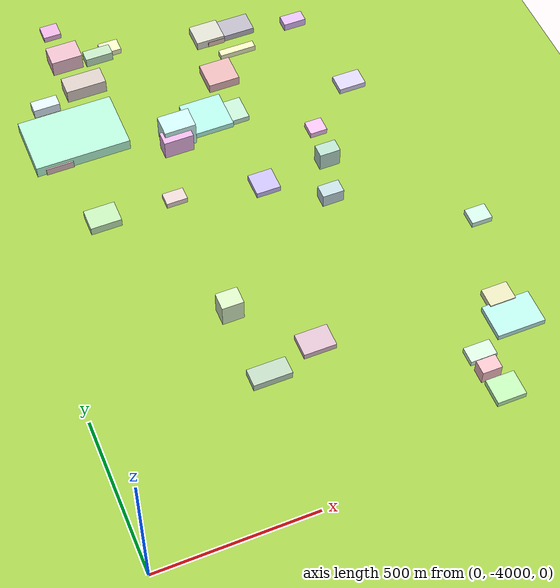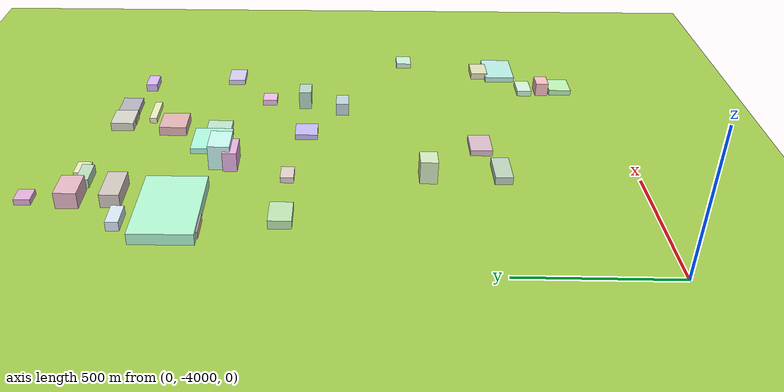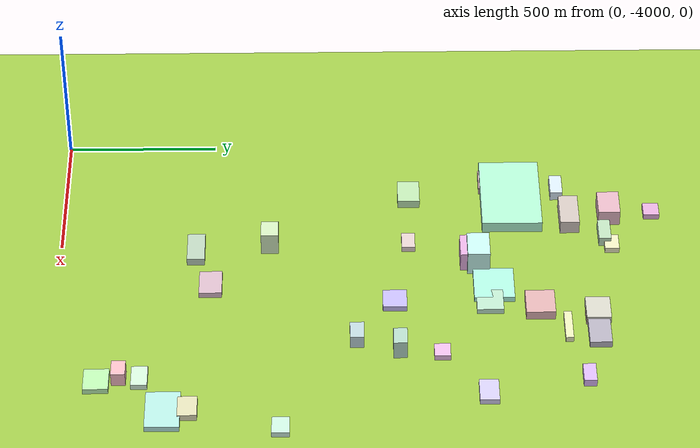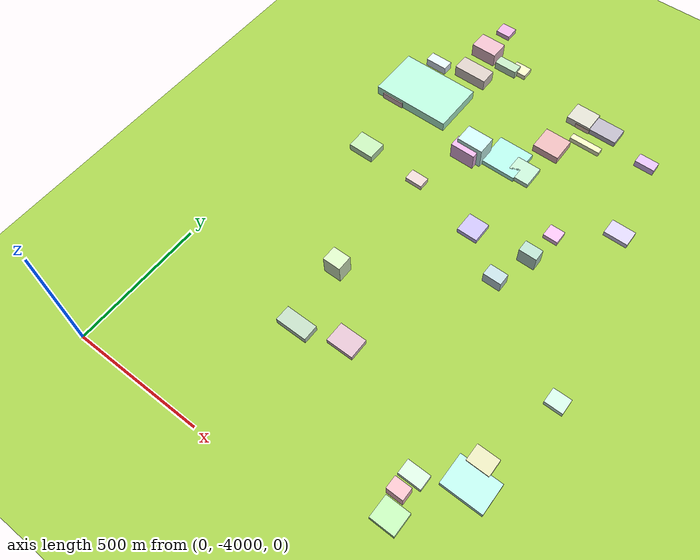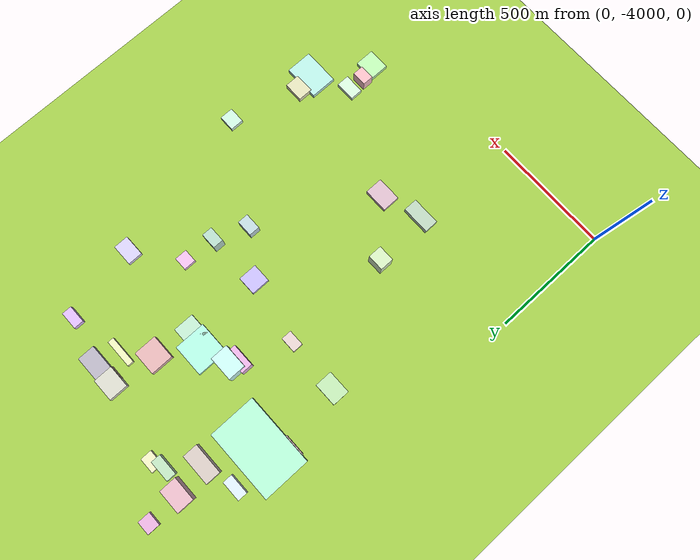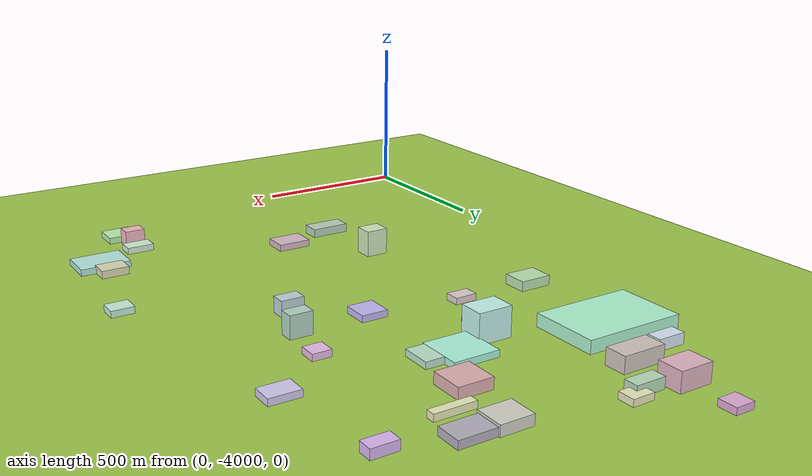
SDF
<sdf version="1.9">
 <world name="city_map">
  <model name="ground_plane">
   <static>1</static>
   <link name="link">
    <collision name="collision">
     <geometry><plane><normal>0 0 1</normal><size>11000 11000</size></plane></geometry>
    </collision>
    <visual name="visual">
     <geometry><plane><normal>0 0 1</normal><size>11000 11000</size></plane></geometry>
     <material>
      <ambient>0.551 0.712 0.210 1</ambient>
      <diffuse>0.651 0.812 0.310 1</diffuse>
      <specular>0.1 0.1 0.05 1</specular>
     </material>
    </visual>
   </link>
  </model>
  <model name="building_52394954">
   <static>1</static>
   <pose>284.5301751078761 -2494.1536711187914 19.5 0 0 0</pose>
   <link name="link">
    <collision name="collision">
     <geometry><box><size>310.01507886331234 201.3651000004728 39.0</size></box></geometry>
    </collision>
    <visual name="visual">
     <cast_shadows>false</cast_shadows>
     <geometry><box><size>310.01507886331234 201.3651000004728 39.0</size></box></geometry>
     <material>
      <ambient>0.614 0.891 0.745 1</ambient>
      <diffuse>0.714 0.991 0.845 1</diffuse>
      <specular>0.214 0.297 0.253 1</specular>
      <emissive>0.01 0.01 0.01 1</emissive>
     </material>
    </visual>
   </link>
  </model>
  <model name="building_309172138">
   <static>1</static>
   <pose>708.4611220423703 -2568.383896521741 10.0 0 0 0</pose>
   <link name="link">
    <collision name="collision">
     <geometry><box><size>138.71670000027336 132.7891002994646 20</size></box></geometry>
    </collision>
    <visual name="visual">
     <cast_shadows>false</cast_shadows>
     <geometry><box><size>138.71670000027336 132.7891002994646 20</size></box></geometry>
     <material>
      <ambient>0.604 0.898 0.798 1</ambient>
      <diffuse>0.704 0.998 0.898 1</diffuse>
      <specular>0.211 0.299 0.269 1</specular>
      <emissive>0.01 0.01 0.01 1</emissive>
     </material>
    </visual>
   </link>
  </model>
  <model name="building_70846053">
   <static>1</static>
   <pose>1272.5089468673098 -3634.069560009593 10.0 0 0 0</pose>
   <link name="link">
    <collision name="collision">
     <geometry><box><size>153.5574000001887 110.51284408469505 20</size></box></geometry>
    </collision>
    <visual name="visual">
     <cast_shadows>false</cast_shadows>
     <geometry><box><size>153.5574000001887 110.51284408469505 20</size></box></geometry>
     <material>
      <ambient>0.636 0.846 0.811 1</ambient>
      <diffuse>0.736 0.946 0.911 1</diffuse>
      <specular>0.221 0.284 0.273 1</specular>
      <emissive>0.01 0.01 0.01 1</emissive>
     </material>
    </visual>
   </link>
  </model>
  <model name="building_496922">
   <static>1</static>
   <pose>923.2569605560539 -2236.037080727702 11.489487341295114 0 0 0</pose>
   <link name="link">
    <collision name="collision">
     <geometry><box><size>138.04440883386172 72.0612000005687 22.978974682590227</size></box></geometry>
    </collision>
    <visual name="visual">
     <cast_shadows>false</cast_shadows>
     <geometry><box><size>138.04440883386172 72.0612000005687 22.978974682590227</size></box></geometry>
     <material>
      <ambient>0.631 0.616 0.672 1</ambient>
      <diffuse>0.731 0.716 0.772 1</diffuse>
      <specular>0.219 0.215 0.232 1</specular>
      <emissive>0.01 0.01 0.01 1</emissive>
     </material>
    </visual>
   </link>
  </model>
  <model name="building_157395479">
   <static>1</static>
   <pose>810.3333677242894 -2421.8799625621205 16.5 0 0 0</pose>
   <link name="link">
    <collision name="collision">
     <geometry><box><size>103.2548698982477 95.61539999977953 33.0</size></box></geometry>
    </collision>
    <visual name="visual">
     <cast_shadows>false</cast_shadows>
     <geometry><box><size>103.2548698982477 95.61539999977953 33.0</size></box></geometry>
     <material>
      <ambient>0.803 0.619 0.624 1</ambient>
      <diffuse>0.903 0.719 0.724 1</diffuse>
      <specular>0.271 0.216 0.217 1</specular>
      <emissive>0.01 0.01 0.01 1</emissive>
     </material>
    </visual>
   </link>
  </model>
  <model name="building_672104369">
   <static>1</static>
   <pose>381.20746355120656 -2302.002176410901 24.0 0 0 0</pose>
   <link name="link">
    <collision name="collision">
     <geometry><box><size>132.95579999999063 63.98546166211206 48.0</size></box></geometry>
    </collision>
    <visual name="visual">
     <cast_shadows>false</cast_shadows>
     <geometry><box><size>132.95579999999063 63.98546166211206 48.0</size></box></geometry>
     <material>
      <ambient>0.747 0.698 0.672 1</ambient>
      <diffuse>0.847 0.798 0.772 1</diffuse>
      <specular>0.254 0.239 0.232 1</specular>
      <emissive>0.01 0.01 0.01 1</emissive>
     </material>
    </visual>
   </link>
  </model>
  <model name="building_144702627">
   <static>1</static>
   <pose>787.7208058710634 -2584.3327178017043 10.0 0 0 0</pose>
   <link name="link">
    <collision name="collision">
     <geometry><box><size>93.41928961545193 87.06840000006366 20</size></box></geometry>
    </collision>
    <visual name="visual">
     <cast_shadows>false</cast_shadows>
     <geometry><box><size>93.41928961545193 87.06840000006366 20</size></box></geometry>
     <material>
      <ambient>0.668 0.822 0.725 1</ambient>
      <diffuse>0.768 0.922 0.825 1</diffuse>
      <specular>0.230 0.277 0.248 1</specular>
      <emissive>0.01 0.01 0.01 1</emissive>
     </material>
    </visual>
   </link>
  </model>
  <model name="building_963803786">
   <static>1</static>
   <pose>695.5199338343282 -3498.0687781408683 10.5 0 0 0</pose>
   <link name="link">
    <collision name="collision">
     <geometry><box><size>102.83128759444048 74.98049999998102 21.0</size></box></geometry>
    </collision>
    <visual name="visual">
     <cast_shadows>false</cast_shadows>
     <geometry><box><size>102.83128759444048 74.98049999998102 21.0</size></box></geometry>
     <material>
      <ambient>0.771 0.651 0.707 1</ambient>
      <diffuse>0.871 0.751 0.807 1</diffuse>
      <specular>0.261 0.225 0.242 1</specular>
      <emissive>0.01 0.01 0.01 1</emissive>
     </material>
    </visual>
   </link>
  </model>
  <model name="building_20309006">
   <static>1</static>
   <pose>836.9662986779949 -2235.200272155642 15.0 0 0 0</pose>
   <link name="link">
    <collision name="collision">
     <geometry><box><size>95.99375139465823 80.20859999955832 30.0</size></box></geometry>
    </collision>
    <visual name="visual">
     <cast_shadows>false</cast_shadows>
     <geometry><box><size>95.99375139465823 80.20859999955832 30.0</size></box></geometry>
     <material>
      <ambient>0.759 0.755 0.706 1</ambient>
      <diffuse>0.859 0.855 0.806 1</diffuse>
      <specular>0.258 0.256 0.242 1</specular>
      <emissive>0.01 0.01 0.01 1</emissive>
     </material>
    </visual>
   </link>
  </model>
  <model name="building_784799930">
   <static>1</static>
   <pose>592.0857914288547 -2615.4765991441313 44.15721418621669 0 0 0</pose>
   <link name="link">
    <collision name="collision">
     <geometry><box><size>103.58354785427939 73.87049999962869 88.31442837243338</size></box></geometry>
    </collision>
    <visual name="visual">
     <cast_shadows>false</cast_shadows>
     <geometry><box><size>103.58354785427939 73.87049999962869 88.31442837243338</size></box></geometry>
     <material>
      <ambient>0.702 0.894 0.860 1</ambient>
      <diffuse>0.802 0.994 0.960 1</diffuse>
      <specular>0.241 0.298 0.288 1</specular>
      <emissive>0.01 0.01 0.01 1</emissive>
     </material>
    </visual>
   </link>
  </model>
  <model name="building_842170766">
   <static>1</static>
   <pose>358.2090526752556 -2167.478820151331 28.695498038106628 0 0 0</pose>
   <link name="link">
    <collision name="collision">
     <geometry><box><size>102.68874791285106 72.69389999928677 57.390996076213256</size></box></geometry>
    </collision>
    <visual name="visual">
     <cast_shadows>false</cast_shadows>
     <geometry><box><size>102.68874791285106 72.69389999928677 57.390996076213256</size></box></geometry>
     <material>
      <ambient>0.815 0.638 0.691 1</ambient>
      <diffuse>0.915 0.738 0.791 1</diffuse>
      <specular>0.274 0.221 0.237 1</specular>
      <emissive>0.01 0.01 0.01 1</emissive>
     </material>
    </visual>
   </link>
  </model>
  <model name="building_43973181">
   <static>1</static>
   <pose>1137.0239936066805 -3849.911623292685 10.0 0 0 0</pose>
   <link name="link">
    <collision name="collision">
     <geometry><box><size>90.85466771737504 81.35190000029979 20</size></box></geometry>
    </collision>
    <visual name="visual">
     <cast_shadows>false</cast_shadows>
     <geometry><box><size>90.85466771737504 81.35190000029979 20</size></box></geometry>
     <material>
      <ambient>0.658 0.875 0.619 1</ambient>
      <diffuse>0.758 0.975 0.719 1</diffuse>
      <specular>0.227 0.293 0.216 1</specular>
      <emissive>0.01 0.01 0.01 1</emissive>
     </material>
    </visual>
   </link>
  </model>
  <model name="building_508705891">
   <static>1</static>
   <pose>264.5561957216304 -2838.7498454021093 15.0 0 0 0</pose>
   <link name="link">
    <collision name="collision">
     <geometry><box><size>99.92219999963226 73.85965444616939 30.0</size></box></geometry>
    </collision>
    <visual name="visual">
     <cast_shadows>false</cast_shadows>
     <geometry><box><size>99.92219999963226 73.85965444616939 30.0</size></box></geometry>
     <material>
      <ambient>0.666 0.821 0.618 1</ambient>
      <diffuse>0.766 0.921 0.718 1</diffuse>
      <specular>0.230 0.276 0.215 1</specular>
      <emissive>0.01 0.01 0.01 1</emissive>
     </material>
    </visual>
   </link>
  </model>
  <model name="building_748717756">
   <static>1</static>
   <pose>529.5425619820187 -3550.2035825913667 13.5 0 0 0</pose>
   <link name="link">
    <collision name="collision">
     <geometry><box><size>121.07569614678245 58.58580000004565 27.0</size></box></geometry>
    </collision>
    <visual name="visual">
     <cast_shadows>false</cast_shadows>
     <geometry><box><size>121.07569614678245 58.58580000004565 27.0</size></box></geometry>
     <material>
      <ambient>0.652 0.745 0.659 1</ambient>
      <diffuse>0.752 0.845 0.759 1</diffuse>
      <specular>0.226 0.254 0.228 1</specular>
      <emissive>0.01 0.01 0.01 1</emissive>
     </material>
    </visual>
   </link>
  </model>
  <model name="building_134703560">
   <static>1</static>
   <pose>778.5675582324317 -2894.90646124473 10.0 0 0 0</pose>
   <link name="link">
    <collision name="collision">
     <geometry><box><size>79.58436003297963 78.93210000041506 20</size></box></geometry>
    </collision>
    <visual name="visual">
     <cast_shadows>false</cast_shadows>
     <geometry><box><size>79.58436003297963 78.93210000041506 20</size></box></geometry>
     <material>
      <ambient>0.691 0.650 0.886 1</ambient>
      <diffuse>0.791 0.750 0.986 1</diffuse>
      <specular>0.237 0.225 0.296 1</specular>
      <emissive>0.01 0.01 0.01 1</emissive>
     </material>
    </visual>
   </link>
  </model>
  <model name="building_538519268">
   <static>1</static>
   <pose>1197.5430749743725 -2605.0417947845217 10.0 0 0 0</pose>
   <link name="link">
    <collision name="collision">
     <geometry><box><size>90.70920000002047 62.50940316611191 20</size></box></geometry>
    </collision>
    <visual name="visual">
     <cast_shadows>false</cast_shadows>
     <geometry><box><size>90.70920000002047 62.50940316611191 20</size></box></geometry>
     <material>
      <ambient>0.753 0.726 0.867 1</ambient>
      <diffuse>0.853 0.826 0.967 1</diffuse>
      <specular>0.256 0.248 0.290 1</specular>
      <emissive>0.01 0.01 0.01 1</emissive>
     </material>
    </visual>
   </link>
  </model>
  <model name="building_456210928">
   <static>1</static>
   <pose>1262.0184093198595 -3556.711193382609 12.0 0 0 0</pose>
   <link name="link">
    <collision name="collision">
     <geometry><box><size>83.05019999964003 62.278282438416454 24.0</size></box></geometry>
    </collision>
    <visual name="visual">
     <cast_shadows>false</cast_shadows>
     <geometry><box><size>83.05019999964003 62.278282438416454 24.0</size></box></geometry>
     <material>
      <ambient>0.799 0.791 0.639 1</ambient>
      <diffuse>0.899 0.891 0.739 1</diffuse>
      <specular>0.270 0.267 0.222 1</specular>
      <emissive>0.01 0.01 0.01 1</emissive>
     </material>
    </visual>
   </link>
  </model>
  <model name="building_334136660">
   <static>1</static>
   <pose>204.30979074998692 -2571.2835786172627 12.963577993628167 0 0 0</pose>
   <link name="link">
    <collision name="collision">
     <geometry><box><size>89.92517954460321 56.177100000290636 25.927155987256334</size></box></geometry>
    </collision>
    <visual name="visual">
     <cast_shadows>false</cast_shadows>
     <geometry><box><size>89.92517954460321 56.177100000290636 25.927155987256334</size></box></geometry>
     <material>
      <ambient>0.765 0.647 0.656 1</ambient>
      <diffuse>0.865 0.747 0.756 1</diffuse>
      <specular>0.259 0.224 0.227 1</specular>
      <emissive>0.01 0.01 0.01 1</emissive>
     </material>
    </visual>
   </link>
  </model>
  <model name="building_772949791">
   <static>1</static>
   <pose>577.93118354927 -2651.2842693855696 34.715593279730655 0 0 0</pose>
   <link name="link">
    <collision name="collision">
     <geometry><box><size>97.35339379772851 48.229500000481096 69.43118655946131</size></box></geometry>
    </collision>
    <visual name="visual">
     <cast_shadows>false</cast_shadows>
     <geometry><box><size>97.35339379772851 48.229500000481096 69.43118655946131</size></box></geometry>
     <material>
      <ambient>0.822 0.614 0.807 1</ambient>
      <diffuse>0.922 0.714 0.907 1</diffuse>
      <specular>0.277 0.214 0.272 1</specular>
      <emissive>0.01 0.01 0.01 1</emissive>
     </material>
    </visual>
   </link>
  </model>
  <model name="building_726173700">
   <static>1</static>
   <pose>1123.518730292173 -3713.2285543778785 10.0 0 0 0</pose>
   <link name="link">
    <collision name="collision">
     <geometry><box><size>83.92709999963444 52.44559994138955 20</size></box></geometry>
    </collision>
    <visual name="visual">
     <cast_shadows>false</cast_shadows>
     <geometry><box><size>83.92709999963444 52.44559994138955 20</size></box></geometry>
     <material>
      <ambient>0.751 0.871 0.774 1</ambient>
      <diffuse>0.851 0.971 0.874 1</diffuse>
      <specular>0.255 0.291 0.262 1</specular>
      <emissive>0.01 0.01 0.01 1</emissive>
     </material>
    </visual>
   </link>
  </model>
  <model name="building_215758299">
   <static>1</static>
   <pose>503.02301894724627 -3305.337204430896 40.5 0 0 0</pose>
   <link name="link">
    <collision name="collision">
     <geometry><box><size>68.89870008919114 58.008599999610055 81.0</size></box></geometry>
    </collision>
    <visual name="visual">
     <cast_shadows>false</cast_shadows>
     <geometry><box><size>68.89870008919114 58.008599999610055 81.0</size></box></geometry>
     <material>
      <ambient>0.747 0.841 0.667 1</ambient>
      <diffuse>0.847 0.941 0.767 1</diffuse>
      <specular>0.254 0.282 0.230 1</specular>
      <emissive>0.01 0.01 0.01 1</emissive>
     </material>
    </visual>
   </link>
  </model>
  <model name="building_599762529">
   <static>1</static>
   <pose>1343.2944792898445 -3262.9336550808393 10.0 0 0 0</pose>
   <link name="link">
    <collision name="collision">
     <geometry><box><size>67.79879999965743 56.71890581911996 20</size></box></geometry>
    </collision>
    <visual name="visual">
     <cast_shadows>false</cast_shadows>
     <geometry><box><size>67.79879999965743 56.71890581911996 20</size></box></geometry>
     <material>
      <ambient>0.718 0.864 0.790 1</ambient>
      <diffuse>0.818 0.964 0.890 1</diffuse>
      <specular>0.246 0.289 0.267 1</specular>
      <emissive>0.01 0.01 0.01 1</emissive>
     </material>
    </visual>
   </link>
  </model>
  <model name="building_95787011">
   <static>1</static>
   <pose>466.200620016131 -2188.0266047773734 16.5 0 0 0</pose>
   <link name="link">
    <collision name="collision">
     <geometry><box><size>91.34190000031595 40.65809217044793 33.0</size></box></geometry>
    </collision>
    <visual name="visual">
     <cast_shadows>false</cast_shadows>
     <geometry><box><size>91.34190000031595 40.65809217044793 33.0</size></box></geometry>
     <material>
      <ambient>0.661 0.792 0.657 1</ambient>
      <diffuse>0.761 0.892 0.757 1</diffuse>
      <specular>0.228 0.268 0.227 1</specular>
      <emissive>0.01 0.01 0.01 1</emissive>
     </material>
    </visual>
   </link>
  </model>
  <model name="building_547840759">
   <static>1</static>
   <pose>237.44951176477375 -2336.905614538013 16.5 0 0 0</pose>
   <link name="link">
    <collision name="collision">
     <geometry><box><size>86.93520000008448 41.38913455750491 33.0</size></box></geometry>
    </collision>
    <visual name="visual">
     <cast_shadows>false</cast_shadows>
     <geometry><box><size>86.93520000008448 41.38913455750491 33.0</size></box></geometry>
     <material>
      <ambient>0.776 0.836 0.888 1</ambient>
      <diffuse>0.876 0.936 0.988 1</diffuse>
      <specular>0.263 0.281 0.296 1</specular>
      <emissive>0.01 0.01 0.01 1</emissive>
     </material>
    </visual>
   </link>
  </model>
  <model name="building_444427785">
   <static>1</static>
   <pose>951.0041806405194 -3019.9806479485296 23.817332448454017 0 0 0</pose>
   <link name="link">
    <collision name="collision">
     <geometry><box><size>69.76349999974474 45.86219721373772 47.634664896908035</size></box></geometry>
    </collision>
    <visual name="visual">
     <cast_shadows>false</cast_shadows>
     <geometry><box><size>69.76349999974474 45.86219721373772 47.634664896908035</size></box></geometry>
     <material>
      <ambient>0.662 0.757 0.780 1</ambient>
      <diffuse>0.762 0.857 0.880 1</diffuse>
      <specular>0.228 0.257 0.264 1</specular>
      <emissive>0.01 0.01 0.01 1</emissive>
     </material>
    </visual>
   </link>
  </model>
  <model name="building_365384531">
   <static>1</static>
   <pose>514.2658638152733 -2166.675538736589 10.0 0 0 0</pose>
   <link name="link">
    <collision name="collision">
     <geometry><box><size>66.24056970154483 47.896499999744435 20</size></box></geometry>
    </collision>
    <visual name="visual">
     <cast_shadows>false</cast_shadows>
     <geometry><box><size>66.24056970154483 47.896499999744435 20</size></box></geometry>
     <material>
      <ambient>0.851 0.847 0.676 1</ambient>
      <diffuse>0.951 0.947 0.776 1</diffuse>
      <specular>0.285 0.284 0.233 1</specular>
      <emissive>0.01 0.01 0.01 1</emissive>
     </material>
    </visual>
   </link>
  </model>
  <model name="building_133156396">
   <static>1</static>
   <pose>1130.8212189199692 -2282.7423585712845 13.49651807666914 0 0 0</pose>
   <link name="link">
    <collision name="collision">
     <geometry><box><size>75.61455204137363 41.43629999996534 26.99303615333828</size></box></geometry>
    </collision>
    <visual name="visual">
     <cast_shadows>false</cast_shadows>
     <geometry><box><size>75.61455204137363 41.43629999996534 26.99303615333828</size></box></geometry>
     <material>
      <ambient>0.781 0.644 0.895 1</ambient>
      <diffuse>0.881 0.744 0.995 1</diffuse>
      <specular>0.264 0.223 0.299 1</specular>
      <emissive>0.01 0.01 0.01 1</emissive>
     </material>
    </visual>
   </link>
  </model>
  <model name="building_450623618">
   <static>1</static>
   <pose>906.7360455155998 -2335.1432046346245 10.0 0 0 0</pose>
   <link name="link">
    <collision name="collision">
     <geometry><box><size>121.25489044451044 25.674300000325445 20</size></box></geometry>
    </collision>
    <visual name="visual">
     <cast_shadows>false</cast_shadows>
     <geometry><box><size>121.25489044451044 25.674300000325445 20</size></box></geometry>
     <material>
      <ambient>0.842 0.855 0.658 1</ambient>
      <diffuse>0.942 0.955 0.758 1</diffuse>
      <specular>0.283 0.287 0.227 1</specular>
      <emissive>0.01 0.01 0.01 1</emissive>
     </material>
    </visual>
   </link>
  </model>
  <model name="building_31874172">
   <static>1</static>
   <pose>352.7489775957035 -2022.2525208406926 10.0 0 0 0</pose>
   <link name="link">
    <collision name="collision">
     <geometry><box><size>58.663499999376256 52.99492680230987 20</size></box></geometry>
    </collision>
    <visual name="visual">
     <cast_shadows>false</cast_shadows>
     <geometry><box><size>58.663499999376256 52.99492680230987 20</size></box></geometry>
     <material>
      <ambient>0.810 0.600 0.775 1</ambient>
      <diffuse>0.910 0.700 0.875 1</diffuse>
      <specular>0.273 0.210 0.263 1</specular>
      <emissive>0.01 0.01 0.01 1</emissive>
     </material>
    </visual>
   </link>
  </model>
  <model name="building_316595854">
   <static>1</static>
   <pose>857.1583327438686 -2250.3114977791934 10.0 0 0 0</pose>
   <link name="link">
    <collision name="collision">
     <geometry><box><size>58.65328201999499 52.26990000037546 20</size></box></geometry>
    </collision>
    <visual name="visual">
     <cast_shadows>false</cast_shadows>
     <geometry><box><size>58.65328201999499 52.26990000037546 20</size></box></geometry>
     <material>
      <ambient>0.810 0.685 0.625 1</ambient>
      <diffuse>0.910 0.785 0.725 1</diffuse>
      <specular>0.273 0.235 0.217 1</specular>
      <emissive>0.01 0.01 0.01 1</emissive>
     </material>
    </visual>
   </link>
  </model>
  <model name="building_259434519">
   <static>1</static>
   <pose>999.6659455351052 -2881.5435801226795 33.74738931640239 0 0 0</pose>
   <link name="link">
    <collision name="collision">
     <geometry><box><size>68.31149559141264 44.744099999974196 67.49477863280478</size></box></geometry>
    </collision>
    <visual name="visual">
     <cast_shadows>false</cast_shadows>
     <geometry><box><size>68.31149559141264 44.744099999974196 67.49477863280478</size></box></geometry>
     <material>
      <ambient>0.626 0.764 0.702 1</ambient>
      <diffuse>0.726 0.864 0.802 1</diffuse>
      <specular>0.218 0.259 0.241 1</specular>
      <emissive>0.01 0.01 0.01 1</emissive>
     </material>
    </visual>
   </link>
  </model>
  <model name="building_707978020">
   <static>1</static>
   <pose>498.7901819063355 -2844.5860321097234 10.0 0 0 0</pose>
   <link name="link">
    <collision name="collision">
     <geometry><box><size>68.0652000004045 44.19128078952667 20</size></box></geometry>
    </collision>
    <visual name="visual">
     <cast_shadows>false</cast_shadows>
     <geometry><box><size>68.0652000004045 44.19128078952667 20</size></box></geometry>
     <material>
      <ambient>0.809 0.733 0.724 1</ambient>
      <diffuse>0.909 0.833 0.824 1</diffuse>
      <specular>0.273 0.250 0.247 1</specular>
      <emissive>0.01 0.01 0.01 1</emissive>
     </material>
    </visual>
   </link>
  </model>
  <model name="building_362819962">
   <static>1</static>
   <pose>1017.8846727307258 -2747.1742762074928 10.0 0 0 0</pose>
   <link name="link">
    <collision name="collision">
     <geometry><box><size>56.46968733608645 52.09229999987741 20</size></box></geometry>
    </collision>
    <visual name="visual">
     <cast_shadows>false</cast_shadows>
     <geometry><box><size>56.46968733608645 52.09229999987741 20</size></box></geometry>
     <material>
      <ambient>0.847 0.659 0.833 1</ambient>
      <diffuse>0.947 0.759 0.933 1</diffuse>
      <specular>0.284 0.228 0.280 1</specular>
      <emissive>0.01 0.01 0.01 1</emissive>
     </material>
    </visual>
   </link>
  </model>
  <model name="building_790673637">
   <static>1</static>
   <pose>1115.7499649576973 -3778.8669195760426 24.928731818485353 0 0 0</pose>
   <link name="link">
    <collision name="collision">
     <geometry><box><size>61.627199999307436 45.67334927859903 49.85746363697071</size></box></geometry>
    </collision>
    <visual name="visual">
     <cast_shadows>false</cast_shadows>
     <geometry><box><size>61.627199999307436 45.67334927859903 49.85746363697071</size></box></geometry>
     <material>
      <ambient>0.895 0.660 0.691 1</ambient>
      <diffuse>0.995 0.760 0.791 1</diffuse>
      <specular>0.298 0.228 0.237 1</specular>
      <emissive>0.01 0.01 0.01 1</emissive>
     </material>
    </visual>
   </link>
  </model>
 </world>
</sdf>
